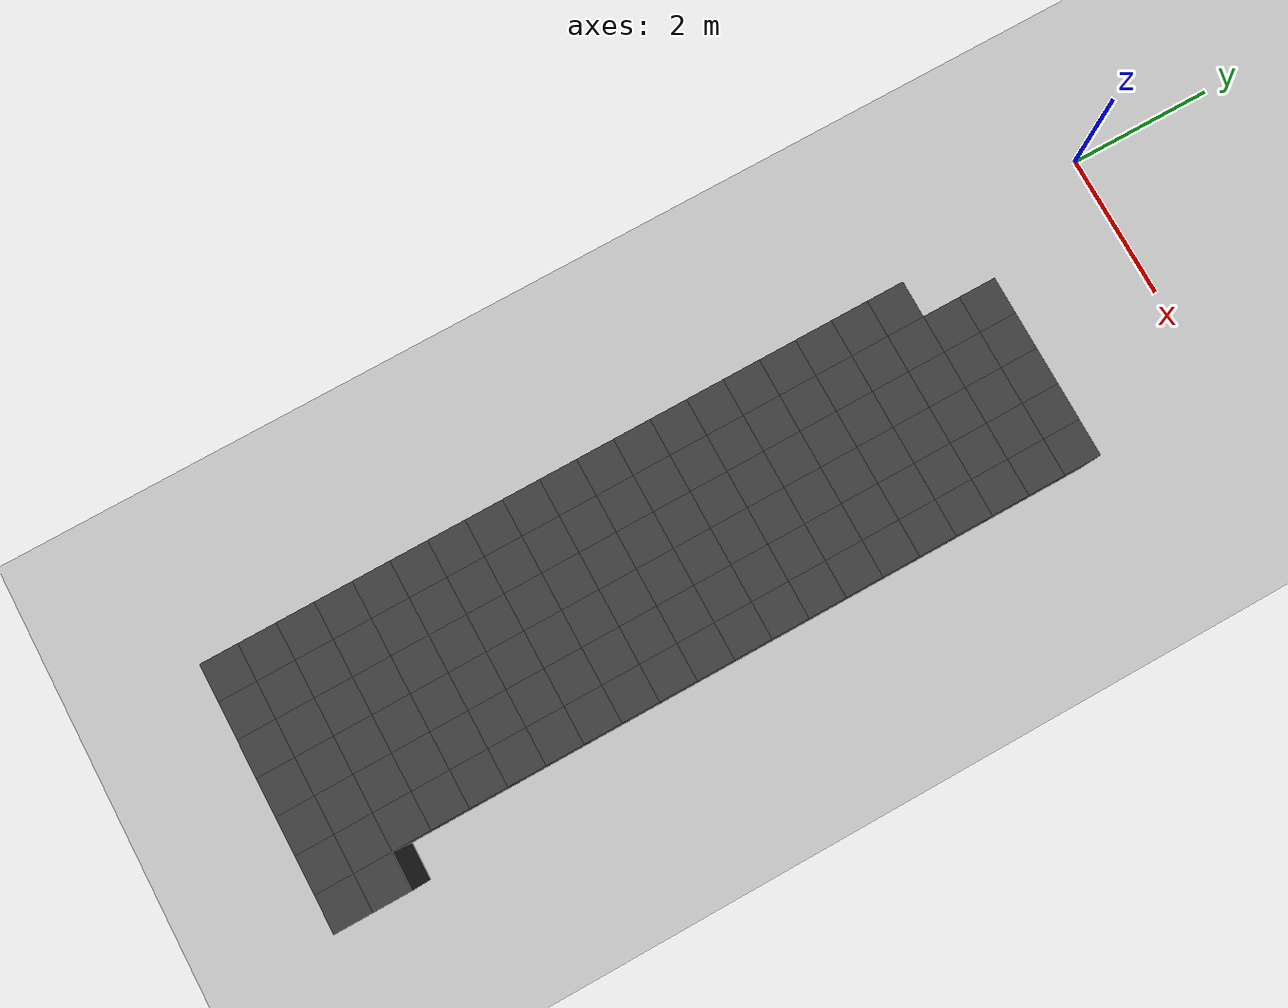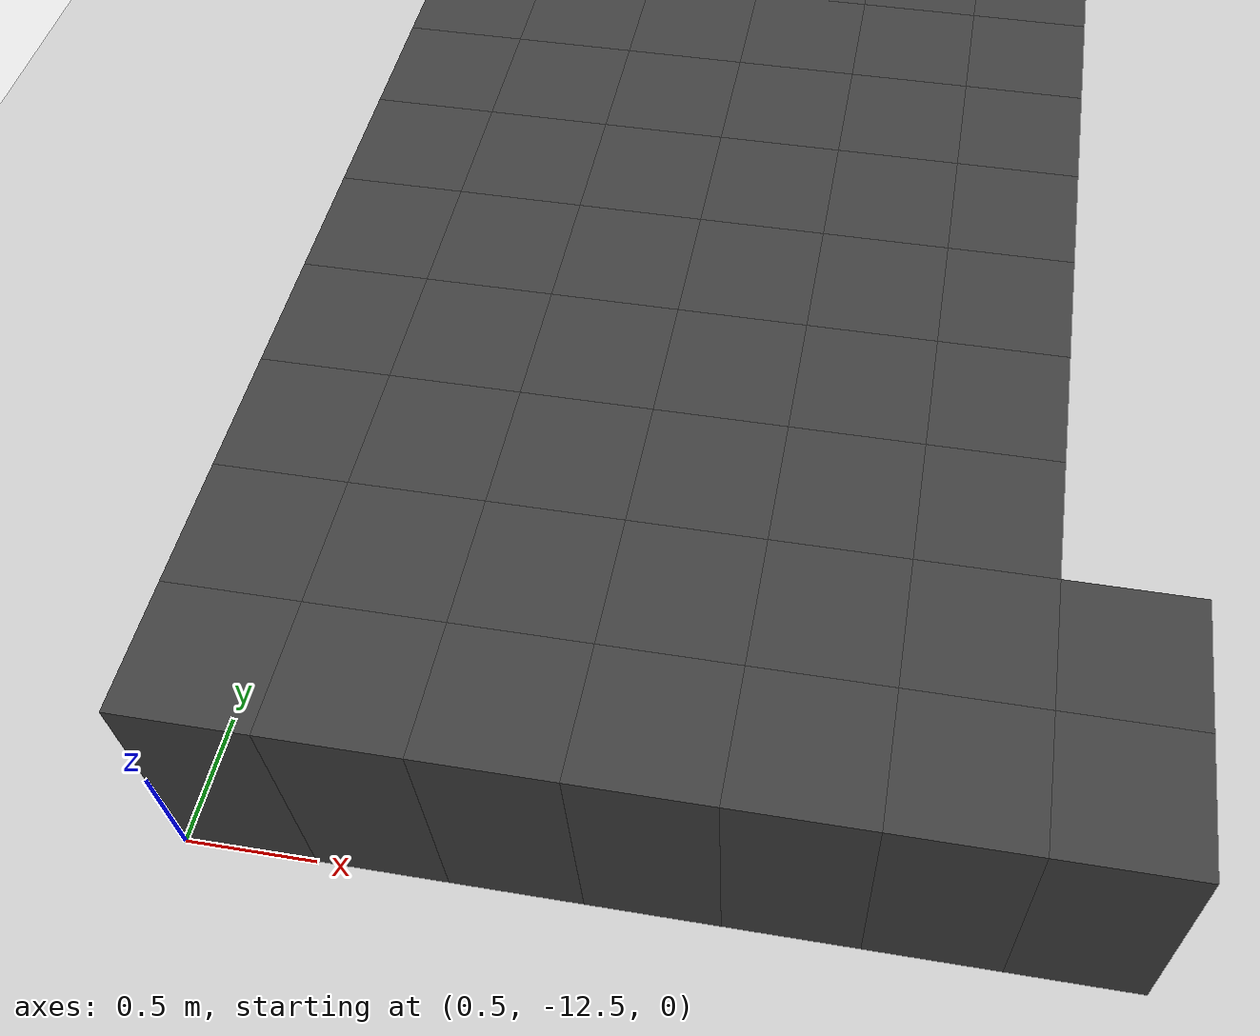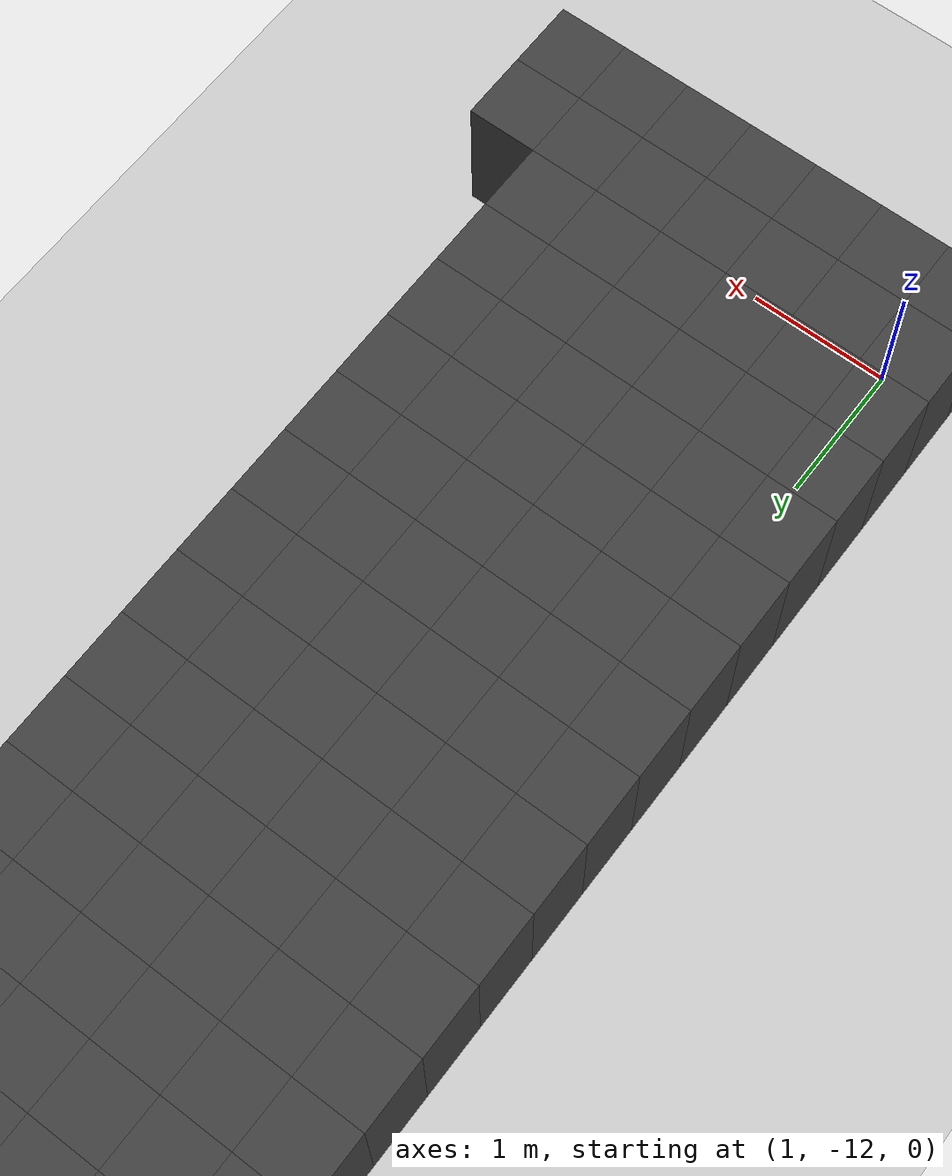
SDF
<sdf version="1.7">
 <world name="map_14190">
  <model name="ground_plane">
   <static>true</static>
   <link name="link">
    <collision name="collision">
     <geometry><plane><normal>0 0 1</normal><size>200 200</size></plane></geometry>
    </collision>
    <visual name="visual">
     <geometry><plane><normal>0 0 1</normal><size>200 200</size></plane></geometry>
     <material><ambient>0.8 0.8 0.8 1</ambient><diffuse>0.8 0.8 0.8 1</diffuse></material>
    </visual>
   </link>
  </model>
  <model name="maze_environment">
   <static>true</static>
   <link name="wall_1027">
    <pose>1.250 -2.250 0.500 0 0 0</pose>
    <collision name="col"><geometry><box><size>0.5 0.5 1.0</size></box></geometry></collision>
    <visual name="vis">
     <geometry><box><size>0.5 0.5 1.0</size></box></geometry>
     <material><ambient>0.15 0.15 0.15 1</ambient><diffuse>0.25 0.25 0.25 1</diffuse></material>
    </visual>
   </link>
   <link name="wall_1028">
    <pose>1.750 -2.250 0.500 0 0 0</pose>
    <collision name="col"><geometry><box><size>0.5 0.5 1.0</size></box></geometry></collision>
    <visual name="vis">
     <geometry><box><size>0.5 0.5 1.0</size></box></geometry>
     <material><ambient>0.15 0.15 0.15 1</ambient><diffuse>0.25 0.25 0.25 1</diffuse></material>
    </visual>
   </link>
   <link name="wall_1029">
    <pose>2.250 -2.250 0.500 0 0 0</pose>
    <collision name="col"><geometry><box><size>0.5 0.5 1.0</size></box></geometry></collision>
    <visual name="vis">
     <geometry><box><size>0.5 0.5 1.0</size></box></geometry>
     <material><ambient>0.15 0.15 0.15 1</ambient><diffuse>0.25 0.25 0.25 1</diffuse></material>
    </visual>
   </link>
   <link name="wall_1030">
    <pose>2.750 -2.250 0.500 0 0 0</pose>
    <collision name="col"><geometry><box><size>0.5 0.5 1.0</size></box></geometry></collision>
    <visual name="vis">
     <geometry><box><size>0.5 0.5 1.0</size></box></geometry>
     <material><ambient>0.15 0.15 0.15 1</ambient><diffuse>0.25 0.25 0.25 1</diffuse></material>
    </visual>
   </link>
   <link name="wall_1031">
    <pose>3.250 -2.250 0.500 0 0 0</pose>
    <collision name="col"><geometry><box><size>0.5 0.5 1.0</size></box></geometry></collision>
    <visual name="vis">
     <geometry><box><size>0.5 0.5 1.0</size></box></geometry>
     <material><ambient>0.15 0.15 0.15 1</ambient><diffuse>0.25 0.25 0.25 1</diffuse></material>
    </visual>
   </link>
   <link name="wall_1064">
    <pose>1.250 -2.750 0.500 0 0 0</pose>
    <collision name="col"><geometry><box><size>0.5 0.5 1.0</size></box></geometry></collision>
    <visual name="vis">
     <geometry><box><size>0.5 0.5 1.0</size></box></geometry>
     <material><ambient>0.15 0.15 0.15 1</ambient><diffuse>0.25 0.25 0.25 1</diffuse></material>
    </visual>
   </link>
   <link name="wall_1065">
    <pose>1.750 -2.750 0.500 0 0 0</pose>
    <collision name="col"><geometry><box><size>0.5 0.5 1.0</size></box></geometry></collision>
    <visual name="vis">
     <geometry><box><size>0.5 0.5 1.0</size></box></geometry>
     <material><ambient>0.15 0.15 0.15 1</ambient><diffuse>0.25 0.25 0.25 1</diffuse></material>
    </visual>
   </link>
   <link name="wall_1066">
    <pose>2.250 -2.750 0.500 0 0 0</pose>
    <collision name="col"><geometry><box><size>0.5 0.5 1.0</size></box></geometry></collision>
    <visual name="vis">
     <geometry><box><size>0.5 0.5 1.0</size></box></geometry>
     <material><ambient>0.15 0.15 0.15 1</ambient><diffuse>0.25 0.25 0.25 1</diffuse></material>
    </visual>
   </link>
   <link name="wall_1067">
    <pose>2.750 -2.750 0.500 0 0 0</pose>
    <collision name="col"><geometry><box><size>0.5 0.5 1.0</size></box></geometry></collision>
    <visual name="vis">
     <geometry><box><size>0.5 0.5 1.0</size></box></geometry>
     <material><ambient>0.15 0.15 0.15 1</ambient><diffuse>0.25 0.25 0.25 1</diffuse></material>
    </visual>
   </link>
   <link name="wall_1068">
    <pose>3.250 -2.750 0.500 0 0 0</pose>
    <collision name="col"><geometry><box><size>0.5 0.5 1.0</size></box></geometry></collision>
    <visual name="vis">
     <geometry><box><size>0.5 0.5 1.0</size></box></geometry>
     <material><ambient>0.15 0.15 0.15 1</ambient><diffuse>0.25 0.25 0.25 1</diffuse></material>
    </visual>
   </link>
   <link name="wall_1097">
    <pose>0.750 -3.250 0.500 0 0 0</pose>
    <collision name="col"><geometry><box><size>0.5 0.5 1.0</size></box></geometry></collision>
    <visual name="vis">
     <geometry><box><size>0.5 0.5 1.0</size></box></geometry>
     <material><ambient>0.15 0.15 0.15 1</ambient><diffuse>0.25 0.25 0.25 1</diffuse></material>
    </visual>
   </link>
   <link name="wall_1098">
    <pose>1.250 -3.250 0.500 0 0 0</pose>
    <collision name="col"><geometry><box><size>0.5 0.5 1.0</size></box></geometry></collision>
    <visual name="vis">
     <geometry><box><size>0.5 0.5 1.0</size></box></geometry>
     <material><ambient>0.15 0.15 0.15 1</ambient><diffuse>0.25 0.25 0.25 1</diffuse></material>
    </visual>
   </link>
   <link name="wall_1099">
    <pose>1.750 -3.250 0.500 0 0 0</pose>
    <collision name="col"><geometry><box><size>0.5 0.5 1.0</size></box></geometry></collision>
    <visual name="vis">
     <geometry><box><size>0.5 0.5 1.0</size></box></geometry>
     <material><ambient>0.15 0.15 0.15 1</ambient><diffuse>0.25 0.25 0.25 1</diffuse></material>
    </visual>
   </link>
   <link name="wall_1100">
    <pose>2.250 -3.250 0.500 0 0 0</pose>
    <collision name="col"><geometry><box><size>0.5 0.5 1.0</size></box></geometry></collision>
    <visual name="vis">
     <geometry><box><size>0.5 0.5 1.0</size></box></geometry>
     <material><ambient>0.15 0.15 0.15 1</ambient><diffuse>0.25 0.25 0.25 1</diffuse></material>
    </visual>
   </link>
   <link name="wall_1101">
    <pose>2.750 -3.250 0.500 0 0 0</pose>
    <collision name="col"><geometry><box><size>0.5 0.5 1.0</size></box></geometry></collision>
    <visual name="vis">
     <geometry><box><size>0.5 0.5 1.0</size></box></geometry>
     <material><ambient>0.15 0.15 0.15 1</ambient><diffuse>0.25 0.25 0.25 1</diffuse></material>
    </visual>
   </link>
   <link name="wall_1102">
    <pose>3.250 -3.250 0.500 0 0 0</pose>
    <collision name="col"><geometry><box><size>0.5 0.5 1.0</size></box></geometry></collision>
    <visual name="vis">
     <geometry><box><size>0.5 0.5 1.0</size></box></geometry>
     <material><ambient>0.15 0.15 0.15 1</ambient><diffuse>0.25 0.25 0.25 1</diffuse></material>
    </visual>
   </link>
   <link name="wall_1135">
    <pose>0.750 -3.750 0.500 0 0 0</pose>
    <collision name="col"><geometry><box><size>0.5 0.5 1.0</size></box></geometry></collision>
    <visual name="vis">
     <geometry><box><size>0.5 0.5 1.0</size></box></geometry>
     <material><ambient>0.15 0.15 0.15 1</ambient><diffuse>0.25 0.25 0.25 1</diffuse></material>
    </visual>
   </link>
   <link name="wall_1136">
    <pose>1.250 -3.750 0.500 0 0 0</pose>
    <collision name="col"><geometry><box><size>0.5 0.5 1.0</size></box></geometry></collision>
    <visual name="vis">
     <geometry><box><size>0.5 0.5 1.0</size></box></geometry>
     <material><ambient>0.15 0.15 0.15 1</ambient><diffuse>0.25 0.25 0.25 1</diffuse></material>
    </visual>
   </link>
   <link name="wall_1137">
    <pose>1.750 -3.750 0.500 0 0 0</pose>
    <collision name="col"><geometry><box><size>0.5 0.5 1.0</size></box></geometry></collision>
    <visual name="vis">
     <geometry><box><size>0.5 0.5 1.0</size></box></geometry>
     <material><ambient>0.15 0.15 0.15 1</ambient><diffuse>0.25 0.25 0.25 1</diffuse></material>
    </visual>
   </link>
   <link name="wall_1138">
    <pose>2.250 -3.750 0.500 0 0 0</pose>
    <collision name="col"><geometry><box><size>0.5 0.5 1.0</size></box></geometry></collision>
    <visual name="vis">
     <geometry><box><size>0.5 0.5 1.0</size></box></geometry>
     <material><ambient>0.15 0.15 0.15 1</ambient><diffuse>0.25 0.25 0.25 1</diffuse></material>
    </visual>
   </link>
   <link name="wall_1139">
    <pose>2.750 -3.750 0.500 0 0 0</pose>
    <collision name="col"><geometry><box><size>0.5 0.5 1.0</size></box></geometry></collision>
    <visual name="vis">
     <geometry><box><size>0.5 0.5 1.0</size></box></geometry>
     <material><ambient>0.15 0.15 0.15 1</ambient><diffuse>0.25 0.25 0.25 1</diffuse></material>
    </visual>
   </link>
   <link name="wall_1140">
    <pose>3.250 -3.750 0.500 0 0 0</pose>
    <collision name="col"><geometry><box><size>0.5 0.5 1.0</size></box></geometry></collision>
    <visual name="vis">
     <geometry><box><size>0.5 0.5 1.0</size></box></geometry>
     <material><ambient>0.15 0.15 0.15 1</ambient><diffuse>0.25 0.25 0.25 1</diffuse></material>
    </visual>
   </link>
   <link name="wall_1176">
    <pose>0.750 -4.250 0.500 0 0 0</pose>
    <collision name="col"><geometry><box><size>0.5 0.5 1.0</size></box></geometry></collision>
    <visual name="vis">
     <geometry><box><size>0.5 0.5 1.0</size></box></geometry>
     <material><ambient>0.15 0.15 0.15 1</ambient><diffuse>0.25 0.25 0.25 1</diffuse></material>
    </visual>
   </link>
   <link name="wall_1177">
    <pose>1.250 -4.250 0.500 0 0 0</pose>
    <collision name="col"><geometry><box><size>0.5 0.5 1.0</size></box></geometry></collision>
    <visual name="vis">
     <geometry><box><size>0.5 0.5 1.0</size></box></geometry>
     <material><ambient>0.15 0.15 0.15 1</ambient><diffuse>0.25 0.25 0.25 1</diffuse></material>
    </visual>
   </link>
   <link name="wall_1178">
    <pose>1.750 -4.250 0.500 0 0 0</pose>
    <collision name="col"><geometry><box><size>0.5 0.5 1.0</size></box></geometry></collision>
    <visual name="vis">
     <geometry><box><size>0.5 0.5 1.0</size></box></geometry>
     <material><ambient>0.15 0.15 0.15 1</ambient><diffuse>0.25 0.25 0.25 1</diffuse></material>
    </visual>
   </link>
   <link name="wall_1179">
    <pose>2.250 -4.250 0.500 0 0 0</pose>
    <collision name="col"><geometry><box><size>0.5 0.5 1.0</size></box></geometry></collision>
    <visual name="vis">
     <geometry><box><size>0.5 0.5 1.0</size></box></geometry>
     <material><ambient>0.15 0.15 0.15 1</ambient><diffuse>0.25 0.25 0.25 1</diffuse></material>
    </visual>
   </link>
   <link name="wall_1180">
    <pose>2.750 -4.250 0.500 0 0 0</pose>
    <collision name="col"><geometry><box><size>0.5 0.5 1.0</size></box></geometry></collision>
    <visual name="vis">
     <geometry><box><size>0.5 0.5 1.0</size></box></geometry>
     <material><ambient>0.15 0.15 0.15 1</ambient><diffuse>0.25 0.25 0.25 1</diffuse></material>
    </visual>
   </link>
   <link name="wall_1181">
    <pose>3.250 -4.250 0.500 0 0 0</pose>
    <collision name="col"><geometry><box><size>0.5 0.5 1.0</size></box></geometry></collision>
    <visual name="vis">
     <geometry><box><size>0.5 0.5 1.0</size></box></geometry>
     <material><ambient>0.15 0.15 0.15 1</ambient><diffuse>0.25 0.25 0.25 1</diffuse></material>
    </visual>
   </link>
   <link name="wall_1217">
    <pose>0.750 -4.750 0.500 0 0 0</pose>
    <collision name="col"><geometry><box><size>0.5 0.5 1.0</size></box></geometry></collision>
    <visual name="vis">
     <geometry><box><size>0.5 0.5 1.0</size></box></geometry>
     <material><ambient>0.15 0.15 0.15 1</ambient><diffuse>0.25 0.25 0.25 1</diffuse></material>
    </visual>
   </link>
   <link name="wall_1218">
    <pose>1.250 -4.750 0.500 0 0 0</pose>
    <collision name="col"><geometry><box><size>0.5 0.5 1.0</size></box></geometry></collision>
    <visual name="vis">
     <geometry><box><size>0.5 0.5 1.0</size></box></geometry>
     <material><ambient>0.15 0.15 0.15 1</ambient><diffuse>0.25 0.25 0.25 1</diffuse></material>
    </visual>
   </link>
   <link name="wall_1219">
    <pose>1.750 -4.750 0.500 0 0 0</pose>
    <collision name="col"><geometry><box><size>0.5 0.5 1.0</size></box></geometry></collision>
    <visual name="vis">
     <geometry><box><size>0.5 0.5 1.0</size></box></geometry>
     <material><ambient>0.15 0.15 0.15 1</ambient><diffuse>0.25 0.25 0.25 1</diffuse></material>
    </visual>
   </link>
   <link name="wall_1220">
    <pose>2.250 -4.750 0.500 0 0 0</pose>
    <collision name="col"><geometry><box><size>0.5 0.5 1.0</size></box></geometry></collision>
    <visual name="vis">
     <geometry><box><size>0.5 0.5 1.0</size></box></geometry>
     <material><ambient>0.15 0.15 0.15 1</ambient><diffuse>0.25 0.25 0.25 1</diffuse></material>
    </visual>
   </link>
   <link name="wall_1221">
    <pose>2.750 -4.750 0.500 0 0 0</pose>
    <collision name="col"><geometry><box><size>0.5 0.5 1.0</size></box></geometry></collision>
    <visual name="vis">
     <geometry><box><size>0.5 0.5 1.0</size></box></geometry>
     <material><ambient>0.15 0.15 0.15 1</ambient><diffuse>0.25 0.25 0.25 1</diffuse></material>
    </visual>
   </link>
   <link name="wall_1222">
    <pose>3.250 -4.750 0.500 0 0 0</pose>
    <collision name="col"><geometry><box><size>0.5 0.5 1.0</size></box></geometry></collision>
    <visual name="vis">
     <geometry><box><size>0.5 0.5 1.0</size></box></geometry>
     <material><ambient>0.15 0.15 0.15 1</ambient><diffuse>0.25 0.25 0.25 1</diffuse></material>
    </visual>
   </link>
   <link name="wall_1244">
    <pose>0.750 -5.250 0.500 0 0 0</pose>
    <collision name="col"><geometry><box><size>0.5 0.5 1.0</size></box></geometry></collision>
    <visual name="vis">
     <geometry><box><size>0.5 0.5 1.0</size></box></geometry>
     <material><ambient>0.15 0.15 0.15 1</ambient><diffuse>0.25 0.25 0.25 1</diffuse></material>
    </visual>
   </link>
   <link name="wall_1245">
    <pose>1.250 -5.250 0.500 0 0 0</pose>
    <collision name="col"><geometry><box><size>0.5 0.5 1.0</size></box></geometry></collision>
    <visual name="vis">
     <geometry><box><size>0.5 0.5 1.0</size></box></geometry>
     <material><ambient>0.15 0.15 0.15 1</ambient><diffuse>0.25 0.25 0.25 1</diffuse></material>
    </visual>
   </link>
   <link name="wall_1246">
    <pose>1.750 -5.250 0.500 0 0 0</pose>
    <collision name="col"><geometry><box><size>0.5 0.5 1.0</size></box></geometry></collision>
    <visual name="vis">
     <geometry><box><size>0.5 0.5 1.0</size></box></geometry>
     <material><ambient>0.15 0.15 0.15 1</ambient><diffuse>0.25 0.25 0.25 1</diffuse></material>
    </visual>
   </link>
   <link name="wall_1247">
    <pose>2.250 -5.250 0.500 0 0 0</pose>
    <collision name="col"><geometry><box><size>0.5 0.5 1.0</size></box></geometry></collision>
    <visual name="vis">
     <geometry><box><size>0.5 0.5 1.0</size></box></geometry>
     <material><ambient>0.15 0.15 0.15 1</ambient><diffuse>0.25 0.25 0.25 1</diffuse></material>
    </visual>
   </link>
   <link name="wall_1248">
    <pose>2.750 -5.250 0.500 0 0 0</pose>
    <collision name="col"><geometry><box><size>0.5 0.5 1.0</size></box></geometry></collision>
    <visual name="vis">
     <geometry><box><size>0.5 0.5 1.0</size></box></geometry>
     <material><ambient>0.15 0.15 0.15 1</ambient><diffuse>0.25 0.25 0.25 1</diffuse></material>
    </visual>
   </link>
   <link name="wall_1249">
    <pose>3.250 -5.250 0.500 0 0 0</pose>
    <collision name="col"><geometry><box><size>0.5 0.5 1.0</size></box></geometry></collision>
    <visual name="vis">
     <geometry><box><size>0.5 0.5 1.0</size></box></geometry>
     <material><ambient>0.15 0.15 0.15 1</ambient><diffuse>0.25 0.25 0.25 1</diffuse></material>
    </visual>
   </link>
   <link name="wall_1279">
    <pose>0.750 -5.750 0.500 0 0 0</pose>
    <collision name="col"><geometry><box><size>0.5 0.5 1.0</size></box></geometry></collision>
    <visual name="vis">
     <geometry><box><size>0.5 0.5 1.0</size></box></geometry>
     <material><ambient>0.15 0.15 0.15 1</ambient><diffuse>0.25 0.25 0.25 1</diffuse></material>
    </visual>
   </link>
   <link name="wall_1280">
    <pose>1.250 -5.750 0.500 0 0 0</pose>
    <collision name="col"><geometry><box><size>0.5 0.5 1.0</size></box></geometry></collision>
    <visual name="vis">
     <geometry><box><size>0.5 0.5 1.0</size></box></geometry>
     <material><ambient>0.15 0.15 0.15 1</ambient><diffuse>0.25 0.25 0.25 1</diffuse></material>
    </visual>
   </link>
   <link name="wall_1281">
    <pose>1.750 -5.750 0.500 0 0 0</pose>
    <collision name="col"><geometry><box><size>0.5 0.5 1.0</size></box></geometry></collision>
    <visual name="vis">
     <geometry><box><size>0.5 0.5 1.0</size></box></geometry>
     <material><ambient>0.15 0.15 0.15 1</ambient><diffuse>0.25 0.25 0.25 1</diffuse></material>
    </visual>
   </link>
   <link name="wall_1282">
    <pose>2.250 -5.750 0.500 0 0 0</pose>
    <collision name="col"><geometry><box><size>0.5 0.5 1.0</size></box></geometry></collision>
    <visual name="vis">
     <geometry><box><size>0.5 0.5 1.0</size></box></geometry>
     <material><ambient>0.15 0.15 0.15 1</ambient><diffuse>0.25 0.25 0.25 1</diffuse></material>
    </visual>
   </link>
   <link name="wall_1283">
    <pose>2.750 -5.750 0.500 0 0 0</pose>
    <collision name="col"><geometry><box><size>0.5 0.5 1.0</size></box></geometry></collision>
    <visual name="vis">
     <geometry><box><size>0.5 0.5 1.0</size></box></geometry>
     <material><ambient>0.15 0.15 0.15 1</ambient><diffuse>0.25 0.25 0.25 1</diffuse></material>
    </visual>
   </link>
   <link name="wall_1284">
    <pose>3.250 -5.750 0.500 0 0 0</pose>
    <collision name="col"><geometry><box><size>0.5 0.5 1.0</size></box></geometry></collision>
    <visual name="vis">
     <geometry><box><size>0.5 0.5 1.0</size></box></geometry>
     <material><ambient>0.15 0.15 0.15 1</ambient><diffuse>0.25 0.25 0.25 1</diffuse></material>
    </visual>
   </link>
   <link name="wall_1314">
    <pose>0.750 -6.250 0.500 0 0 0</pose>
    <collision name="col"><geometry><box><size>0.5 0.5 1.0</size></box></geometry></collision>
    <visual name="vis">
     <geometry><box><size>0.5 0.5 1.0</size></box></geometry>
     <material><ambient>0.15 0.15 0.15 1</ambient><diffuse>0.25 0.25 0.25 1</diffuse></material>
    </visual>
   </link>
   <link name="wall_1315">
    <pose>1.250 -6.250 0.500 0 0 0</pose>
    <collision name="col"><geometry><box><size>0.5 0.5 1.0</size></box></geometry></collision>
    <visual name="vis">
     <geometry><box><size>0.5 0.5 1.0</size></box></geometry>
     <material><ambient>0.15 0.15 0.15 1</ambient><diffuse>0.25 0.25 0.25 1</diffuse></material>
    </visual>
   </link>
   <link name="wall_1316">
    <pose>1.750 -6.250 0.500 0 0 0</pose>
    <collision name="col"><geometry><box><size>0.5 0.5 1.0</size></box></geometry></collision>
    <visual name="vis">
     <geometry><box><size>0.5 0.5 1.0</size></box></geometry>
     <material><ambient>0.15 0.15 0.15 1</ambient><diffuse>0.25 0.25 0.25 1</diffuse></material>
    </visual>
   </link>
   <link name="wall_1317">
    <pose>2.250 -6.250 0.500 0 0 0</pose>
    <collision name="col"><geometry><box><size>0.5 0.5 1.0</size></box></geometry></collision>
    <visual name="vis">
     <geometry><box><size>0.5 0.5 1.0</size></box></geometry>
     <material><ambient>0.15 0.15 0.15 1</ambient><diffuse>0.25 0.25 0.25 1</diffuse></material>
    </visual>
   </link>
   <link name="wall_1318">
    <pose>2.750 -6.250 0.500 0 0 0</pose>
    <collision name="col"><geometry><box><size>0.5 0.5 1.0</size></box></geometry></collision>
    <visual name="vis">
     <geometry><box><size>0.5 0.5 1.0</size></box></geometry>
     <material><ambient>0.15 0.15 0.15 1</ambient><diffuse>0.25 0.25 0.25 1</diffuse></material>
    </visual>
   </link>
   <link name="wall_1319">
    <pose>3.250 -6.250 0.500 0 0 0</pose>
    <collision name="col"><geometry><box><size>0.5 0.5 1.0</size></box></geometry></collision>
    <visual name="vis">
     <geometry><box><size>0.5 0.5 1.0</size></box></geometry>
     <material><ambient>0.15 0.15 0.15 1</ambient><diffuse>0.25 0.25 0.25 1</diffuse></material>
    </visual>
   </link>
   <link name="wall_1355">
    <pose>0.750 -6.750 0.500 0 0 0</pose>
    <collision name="col"><geometry><box><size>0.5 0.5 1.0</size></box></geometry></collision>
    <visual name="vis">
     <geometry><box><size>0.5 0.5 1.0</size></box></geometry>
     <material><ambient>0.15 0.15 0.15 1</ambient><diffuse>0.25 0.25 0.25 1</diffuse></material>
    </visual>
   </link>
   <link name="wall_1356">
    <pose>1.250 -6.750 0.500 0 0 0</pose>
    <collision name="col"><geometry><box><size>0.5 0.5 1.0</size></box></geometry></collision>
    <visual name="vis">
     <geometry><box><size>0.5 0.5 1.0</size></box></geometry>
     <material><ambient>0.15 0.15 0.15 1</ambient><diffuse>0.25 0.25 0.25 1</diffuse></material>
    </visual>
   </link>
   <link name="wall_1357">
    <pose>1.750 -6.750 0.500 0 0 0</pose>
    <collision name="col"><geometry><box><size>0.5 0.5 1.0</size></box></geometry></collision>
    <visual name="vis">
     <geometry><box><size>0.5 0.5 1.0</size></box></geometry>
     <material><ambient>0.15 0.15 0.15 1</ambient><diffuse>0.25 0.25 0.25 1</diffuse></material>
    </visual>
   </link>
   <link name="wall_1358">
    <pose>2.250 -6.750 0.500 0 0 0</pose>
    <collision name="col"><geometry><box><size>0.5 0.5 1.0</size></box></geometry></collision>
    <visual name="vis">
     <geometry><box><size>0.5 0.5 1.0</size></box></geometry>
     <material><ambient>0.15 0.15 0.15 1</ambient><diffuse>0.25 0.25 0.25 1</diffuse></material>
    </visual>
   </link>
   <link name="wall_1359">
    <pose>2.750 -6.750 0.500 0 0 0</pose>
    <collision name="col"><geometry><box><size>0.5 0.5 1.0</size></box></geometry></collision>
    <visual name="vis">
     <geometry><box><size>0.5 0.5 1.0</size></box></geometry>
     <material><ambient>0.15 0.15 0.15 1</ambient><diffuse>0.25 0.25 0.25 1</diffuse></material>
    </visual>
   </link>
   <link name="wall_1360">
    <pose>3.250 -6.750 0.500 0 0 0</pose>
    <collision name="col"><geometry><box><size>0.5 0.5 1.0</size></box></geometry></collision>
    <visual name="vis">
     <geometry><box><size>0.5 0.5 1.0</size></box></geometry>
     <material><ambient>0.15 0.15 0.15 1</ambient><diffuse>0.25 0.25 0.25 1</diffuse></material>
    </visual>
   </link>
   <link name="wall_1396">
    <pose>0.750 -7.250 0.500 0 0 0</pose>
    <collision name="col"><geometry><box><size>0.5 0.5 1.0</size></box></geometry></collision>
    <visual name="vis">
     <geometry><box><size>0.5 0.5 1.0</size></box></geometry>
     <material><ambient>0.15 0.15 0.15 1</ambient><diffuse>0.25 0.25 0.25 1</diffuse></material>
    </visual>
   </link>
   <link name="wall_1397">
    <pose>1.250 -7.250 0.500 0 0 0</pose>
    <collision name="col"><geometry><box><size>0.5 0.5 1.0</size></box></geometry></collision>
    <visual name="vis">
     <geometry><box><size>0.5 0.5 1.0</size></box></geometry>
     <material><ambient>0.15 0.15 0.15 1</ambient><diffuse>0.25 0.25 0.25 1</diffuse></material>
    </visual>
   </link>
   <link name="wall_1398">
    <pose>1.750 -7.250 0.500 0 0 0</pose>
    <collision name="col"><geometry><box><size>0.5 0.5 1.0</size></box></geometry></collision>
    <visual name="vis">
     <geometry><box><size>0.5 0.5 1.0</size></box></geometry>
     <material><ambient>0.15 0.15 0.15 1</ambient><diffuse>0.25 0.25 0.25 1</diffuse></material>
    </visual>
   </link>
   <link name="wall_1399">
    <pose>2.250 -7.250 0.500 0 0 0</pose>
    <collision name="col"><geometry><box><size>0.5 0.5 1.0</size></box></geometry></collision>
    <visual name="vis">
     <geometry><box><size>0.5 0.5 1.0</size></box></geometry>
     <material><ambient>0.15 0.15 0.15 1</ambient><diffuse>0.25 0.25 0.25 1</diffuse></material>
    </visual>
   </link>
   <link name="wall_1400">
    <pose>2.750 -7.250 0.500 0 0 0</pose>
    <collision name="col"><geometry><box><size>0.5 0.5 1.0</size></box></geometry></collision>
    <visual name="vis">
     <geometry><box><size>0.5 0.5 1.0</size></box></geometry>
     <material><ambient>0.15 0.15 0.15 1</ambient><diffuse>0.25 0.25 0.25 1</diffuse></material>
    </visual>
   </link>
   <link name="wall_1401">
    <pose>3.250 -7.250 0.500 0 0 0</pose>
    <collision name="col"><geometry><box><size>0.5 0.5 1.0</size></box></geometry></collision>
    <visual name="vis">
     <geometry><box><size>0.5 0.5 1.0</size></box></geometry>
     <material><ambient>0.15 0.15 0.15 1</ambient><diffuse>0.25 0.25 0.25 1</diffuse></material>
    </visual>
   </link>
   <link name="wall_1429">
    <pose>0.750 -7.750 0.500 0 0 0</pose>
    <collision name="col"><geometry><box><size>0.5 0.5 1.0</size></box></geometry></collision>
    <visual name="vis">
     <geometry><box><size>0.5 0.5 1.0</size></box></geometry>
     <material><ambient>0.15 0.15 0.15 1</ambient><diffuse>0.25 0.25 0.25 1</diffuse></material>
    </visual>
   </link>
   <link name="wall_1430">
    <pose>1.250 -7.750 0.500 0 0 0</pose>
    <collision name="col"><geometry><box><size>0.5 0.5 1.0</size></box></geometry></collision>
    <visual name="vis">
     <geometry><box><size>0.5 0.5 1.0</size></box></geometry>
     <material><ambient>0.15 0.15 0.15 1</ambient><diffuse>0.25 0.25 0.25 1</diffuse></material>
    </visual>
   </link>
   <link name="wall_1431">
    <pose>1.750 -7.750 0.500 0 0 0</pose>
    <collision name="col"><geometry><box><size>0.5 0.5 1.0</size></box></geometry></collision>
    <visual name="vis">
     <geometry><box><size>0.5 0.5 1.0</size></box></geometry>
     <material><ambient>0.15 0.15 0.15 1</ambient><diffuse>0.25 0.25 0.25 1</diffuse></material>
    </visual>
   </link>
   <link name="wall_1432">
    <pose>2.250 -7.750 0.500 0 0 0</pose>
    <collision name="col"><geometry><box><size>0.5 0.5 1.0</size></box></geometry></collision>
    <visual name="vis">
     <geometry><box><size>0.5 0.5 1.0</size></box></geometry>
     <material><ambient>0.15 0.15 0.15 1</ambient><diffuse>0.25 0.25 0.25 1</diffuse></material>
    </visual>
   </link>
   <link name="wall_1433">
    <pose>2.750 -7.750 0.500 0 0 0</pose>
    <collision name="col"><geometry><box><size>0.5 0.5 1.0</size></box></geometry></collision>
    <visual name="vis">
     <geometry><box><size>0.5 0.5 1.0</size></box></geometry>
     <material><ambient>0.15 0.15 0.15 1</ambient><diffuse>0.25 0.25 0.25 1</diffuse></material>
    </visual>
   </link>
   <link name="wall_1434">
    <pose>3.250 -7.750 0.500 0 0 0</pose>
    <collision name="col"><geometry><box><size>0.5 0.5 1.0</size></box></geometry></collision>
    <visual name="vis">
     <geometry><box><size>0.5 0.5 1.0</size></box></geometry>
     <material><ambient>0.15 0.15 0.15 1</ambient><diffuse>0.25 0.25 0.25 1</diffuse></material>
    </visual>
   </link>
   <link name="wall_1462">
    <pose>0.750 -8.250 0.500 0 0 0</pose>
    <collision name="col"><geometry><box><size>0.5 0.5 1.0</size></box></geometry></collision>
    <visual name="vis">
     <geometry><box><size>0.5 0.5 1.0</size></box></geometry>
     <material><ambient>0.15 0.15 0.15 1</ambient><diffuse>0.25 0.25 0.25 1</diffuse></material>
    </visual>
   </link>
   <link name="wall_1463">
    <pose>1.250 -8.250 0.500 0 0 0</pose>
    <collision name="col"><geometry><box><size>0.5 0.5 1.0</size></box></geometry></collision>
    <visual name="vis">
     <geometry><box><size>0.5 0.5 1.0</size></box></geometry>
     <material><ambient>0.15 0.15 0.15 1</ambient><diffuse>0.25 0.25 0.25 1</diffuse></material>
    </visual>
   </link>
   <link name="wall_1464">
    <pose>1.750 -8.250 0.500 0 0 0</pose>
    <collision name="col"><geometry><box><size>0.5 0.5 1.0</size></box></geometry></collision>
    <visual name="vis">
     <geometry><box><size>0.5 0.5 1.0</size></box></geometry>
     <material><ambient>0.15 0.15 0.15 1</ambient><diffuse>0.25 0.25 0.25 1</diffuse></material>
    </visual>
   </link>
   <link name="wall_1465">
    <pose>2.250 -8.250 0.500 0 0 0</pose>
    <collision name="col"><geometry><box><size>0.5 0.5 1.0</size></box></geometry></collision>
    <visual name="vis">
     <geometry><box><size>0.5 0.5 1.0</size></box></geometry>
     <material><ambient>0.15 0.15 0.15 1</ambient><diffuse>0.25 0.25 0.25 1</diffuse></material>
    </visual>
   </link>
   <link name="wall_1466">
    <pose>2.750 -8.250 0.500 0 0 0</pose>
    <collision name="col"><geometry><box><size>0.5 0.5 1.0</size></box></geometry></collision>
    <visual name="vis">
     <geometry><box><size>0.5 0.5 1.0</size></box></geometry>
     <material><ambient>0.15 0.15 0.15 1</ambient><diffuse>0.25 0.25 0.25 1</diffuse></material>
    </visual>
   </link>
   <link name="wall_1467">
    <pose>3.250 -8.250 0.500 0 0 0</pose>
    <collision name="col"><geometry><box><size>0.5 0.5 1.0</size></box></geometry></collision>
    <visual name="vis">
     <geometry><box><size>0.5 0.5 1.0</size></box></geometry>
     <material><ambient>0.15 0.15 0.15 1</ambient><diffuse>0.25 0.25 0.25 1</diffuse></material>
    </visual>
   </link>
   <link name="wall_1501">
    <pose>0.750 -8.750 0.500 0 0 0</pose>
    <collision name="col"><geometry><box><size>0.5 0.5 1.0</size></box></geometry></collision>
    <visual name="vis">
     <geometry><box><size>0.5 0.5 1.0</size></box></geometry>
     <material><ambient>0.15 0.15 0.15 1</ambient><diffuse>0.25 0.25 0.25 1</diffuse></material>
    </visual>
   </link>
   <link name="wall_1502">
    <pose>1.250 -8.750 0.500 0 0 0</pose>
    <collision name="col"><geometry><box><size>0.5 0.5 1.0</size></box></geometry></collision>
    <visual name="vis">
     <geometry><box><size>0.5 0.5 1.0</size></box></geometry>
     <material><ambient>0.15 0.15 0.15 1</ambient><diffuse>0.25 0.25 0.25 1</diffuse></material>
    </visual>
   </link>
   <link name="wall_1503">
    <pose>1.750 -8.750 0.500 0 0 0</pose>
    <collision name="col"><geometry><box><size>0.5 0.5 1.0</size></box></geometry></collision>
    <visual name="vis">
     <geometry><box><size>0.5 0.5 1.0</size></box></geometry>
     <material><ambient>0.15 0.15 0.15 1</ambient><diffuse>0.25 0.25 0.25 1</diffuse></material>
    </visual>
   </link>
   <link name="wall_1504">
    <pose>2.250 -8.750 0.500 0 0 0</pose>
    <collision name="col"><geometry><box><size>0.5 0.5 1.0</size></box></geometry></collision>
    <visual name="vis">
     <geometry><box><size>0.5 0.5 1.0</size></box></geometry>
     <material><ambient>0.15 0.15 0.15 1</ambient><diffuse>0.25 0.25 0.25 1</diffuse></material>
    </visual>
   </link>
   <link name="wall_1505">
    <pose>2.750 -8.750 0.500 0 0 0</pose>
    <collision name="col"><geometry><box><size>0.5 0.5 1.0</size></box></geometry></collision>
    <visual name="vis">
     <geometry><box><size>0.5 0.5 1.0</size></box></geometry>
     <material><ambient>0.15 0.15 0.15 1</ambient><diffuse>0.25 0.25 0.25 1</diffuse></material>
    </visual>
   </link>
   <link name="wall_1506">
    <pose>3.250 -8.750 0.500 0 0 0</pose>
    <collision name="col"><geometry><box><size>0.5 0.5 1.0</size></box></geometry></collision>
    <visual name="vis">
     <geometry><box><size>0.5 0.5 1.0</size></box></geometry>
     <material><ambient>0.15 0.15 0.15 1</ambient><diffuse>0.25 0.25 0.25 1</diffuse></material>
    </visual>
   </link>
   <link name="wall_1534">
    <pose>0.750 -9.250 0.500 0 0 0</pose>
    <collision name="col"><geometry><box><size>0.5 0.5 1.0</size></box></geometry></collision>
    <visual name="vis">
     <geometry><box><size>0.5 0.5 1.0</size></box></geometry>
     <material><ambient>0.15 0.15 0.15 1</ambient><diffuse>0.25 0.25 0.25 1</diffuse></material>
    </visual>
   </link>
   <link name="wall_1535">
    <pose>1.250 -9.250 0.500 0 0 0</pose>
    <collision name="col"><geometry><box><size>0.5 0.5 1.0</size></box></geometry></collision>
    <visual name="vis">
     <geometry><box><size>0.5 0.5 1.0</size></box></geometry>
     <material><ambient>0.15 0.15 0.15 1</ambient><diffuse>0.25 0.25 0.25 1</diffuse></material>
    </visual>
   </link>
   <link name="wall_1536">
    <pose>1.750 -9.250 0.500 0 0 0</pose>
    <collision name="col"><geometry><box><size>0.5 0.5 1.0</size></box></geometry></collision>
    <visual name="vis">
     <geometry><box><size>0.5 0.5 1.0</size></box></geometry>
     <material><ambient>0.15 0.15 0.15 1</ambient><diffuse>0.25 0.25 0.25 1</diffuse></material>
    </visual>
   </link>
   <link name="wall_1537">
    <pose>2.250 -9.250 0.500 0 0 0</pose>
    <collision name="col"><geometry><box><size>0.5 0.5 1.0</size></box></geometry></collision>
    <visual name="vis">
     <geometry><box><size>0.5 0.5 1.0</size></box></geometry>
     <material><ambient>0.15 0.15 0.15 1</ambient><diffuse>0.25 0.25 0.25 1</diffuse></material>
    </visual>
   </link>
   <link name="wall_1538">
    <pose>2.750 -9.250 0.500 0 0 0</pose>
    <collision name="col"><geometry><box><size>0.5 0.5 1.0</size></box></geometry></collision>
    <visual name="vis">
     <geometry><box><size>0.5 0.5 1.0</size></box></geometry>
     <material><ambient>0.15 0.15 0.15 1</ambient><diffuse>0.25 0.25 0.25 1</diffuse></material>
    </visual>
   </link>
   <link name="wall_1539">
    <pose>3.250 -9.250 0.500 0 0 0</pose>
    <collision name="col"><geometry><box><size>0.5 0.5 1.0</size></box></geometry></collision>
    <visual name="vis">
     <geometry><box><size>0.5 0.5 1.0</size></box></geometry>
     <material><ambient>0.15 0.15 0.15 1</ambient><diffuse>0.25 0.25 0.25 1</diffuse></material>
    </visual>
   </link>
   <link name="wall_1566">
    <pose>0.750 -9.750 0.500 0 0 0</pose>
    <collision name="col"><geometry><box><size>0.5 0.5 1.0</size></box></geometry></collision>
    <visual name="vis">
     <geometry><box><size>0.5 0.5 1.0</size></box></geometry>
     <material><ambient>0.15 0.15 0.15 1</ambient><diffuse>0.25 0.25 0.25 1</diffuse></material>
    </visual>
   </link>
   <link name="wall_1567">
    <pose>1.250 -9.750 0.500 0 0 0</pose>
    <collision name="col"><geometry><box><size>0.5 0.5 1.0</size></box></geometry></collision>
    <visual name="vis">
     <geometry><box><size>0.5 0.5 1.0</size></box></geometry>
     <material><ambient>0.15 0.15 0.15 1</ambient><diffuse>0.25 0.25 0.25 1</diffuse></material>
    </visual>
   </link>
   <link name="wall_1568">
    <pose>1.750 -9.750 0.500 0 0 0</pose>
    <collision name="col"><geometry><box><size>0.5 0.5 1.0</size></box></geometry></collision>
    <visual name="vis">
     <geometry><box><size>0.5 0.5 1.0</size></box></geometry>
     <material><ambient>0.15 0.15 0.15 1</ambient><diffuse>0.25 0.25 0.25 1</diffuse></material>
    </visual>
   </link>
   <link name="wall_1569">
    <pose>2.250 -9.750 0.500 0 0 0</pose>
    <collision name="col"><geometry><box><size>0.5 0.5 1.0</size></box></geometry></collision>
    <visual name="vis">
     <geometry><box><size>0.5 0.5 1.0</size></box></geometry>
     <material><ambient>0.15 0.15 0.15 1</ambient><diffuse>0.25 0.25 0.25 1</diffuse></material>
    </visual>
   </link>
   <link name="wall_1570">
    <pose>2.750 -9.750 0.500 0 0 0</pose>
    <collision name="col"><geometry><box><size>0.5 0.5 1.0</size></box></geometry></collision>
    <visual name="vis">
     <geometry><box><size>0.5 0.5 1.0</size></box></geometry>
     <material><ambient>0.15 0.15 0.15 1</ambient><diffuse>0.25 0.25 0.25 1</diffuse></material>
    </visual>
   </link>
   <link name="wall_1571">
    <pose>3.250 -9.750 0.500 0 0 0</pose>
    <collision name="col"><geometry><box><size>0.5 0.5 1.0</size></box></geometry></collision>
    <visual name="vis">
     <geometry><box><size>0.5 0.5 1.0</size></box></geometry>
     <material><ambient>0.15 0.15 0.15 1</ambient><diffuse>0.25 0.25 0.25 1</diffuse></material>
    </visual>
   </link>
   <link name="wall_1599">
    <pose>0.750 -10.250 0.500 0 0 0</pose>
    <collision name="col"><geometry><box><size>0.5 0.5 1.0</size></box></geometry></collision>
    <visual name="vis">
     <geometry><box><size>0.5 0.5 1.0</size></box></geometry>
     <material><ambient>0.15 0.15 0.15 1</ambient><diffuse>0.25 0.25 0.25 1</diffuse></material>
    </visual>
   </link>
   <link name="wall_1600">
    <pose>1.250 -10.250 0.500 0 0 0</pose>
    <collision name="col"><geometry><box><size>0.5 0.5 1.0</size></box></geometry></collision>
    <visual name="vis">
     <geometry><box><size>0.5 0.5 1.0</size></box></geometry>
     <material><ambient>0.15 0.15 0.15 1</ambient><diffuse>0.25 0.25 0.25 1</diffuse></material>
    </visual>
   </link>
   <link name="wall_1601">
    <pose>1.750 -10.250 0.500 0 0 0</pose>
    <collision name="col"><geometry><box><size>0.5 0.5 1.0</size></box></geometry></collision>
    <visual name="vis">
     <geometry><box><size>0.5 0.5 1.0</size></box></geometry>
     <material><ambient>0.15 0.15 0.15 1</ambient><diffuse>0.25 0.25 0.25 1</diffuse></material>
    </visual>
   </link>
   <link name="wall_1602">
    <pose>2.250 -10.250 0.500 0 0 0</pose>
    <collision name="col"><geometry><box><size>0.5 0.5 1.0</size></box></geometry></collision>
    <visual name="vis">
     <geometry><box><size>0.5 0.5 1.0</size></box></geometry>
     <material><ambient>0.15 0.15 0.15 1</ambient><diffuse>0.25 0.25 0.25 1</diffuse></material>
    </visual>
   </link>
   <link name="wall_1603">
    <pose>2.750 -10.250 0.500 0 0 0</pose>
    <collision name="col"><geometry><box><size>0.5 0.5 1.0</size></box></geometry></collision>
    <visual name="vis">
     <geometry><box><size>0.5 0.5 1.0</size></box></geometry>
     <material><ambient>0.15 0.15 0.15 1</ambient><diffuse>0.25 0.25 0.25 1</diffuse></material>
    </visual>
   </link>
   <link name="wall_1604">
    <pose>3.250 -10.250 0.500 0 0 0</pose>
    <collision name="col"><geometry><box><size>0.5 0.5 1.0</size></box></geometry></collision>
    <visual name="vis">
     <geometry><box><size>0.5 0.5 1.0</size></box></geometry>
     <material><ambient>0.15 0.15 0.15 1</ambient><diffuse>0.25 0.25 0.25 1</diffuse></material>
    </visual>
   </link>
   <link name="wall_1632">
    <pose>0.750 -10.750 0.500 0 0 0</pose>
    <collision name="col"><geometry><box><size>0.5 0.5 1.0</size></box></geometry></collision>
    <visual name="vis">
     <geometry><box><size>0.5 0.5 1.0</size></box></geometry>
     <material><ambient>0.15 0.15 0.15 1</ambient><diffuse>0.25 0.25 0.25 1</diffuse></material>
    </visual>
   </link>
   <link name="wall_1633">
    <pose>1.250 -10.750 0.500 0 0 0</pose>
    <collision name="col"><geometry><box><size>0.5 0.5 1.0</size></box></geometry></collision>
    <visual name="vis">
     <geometry><box><size>0.5 0.5 1.0</size></box></geometry>
     <material><ambient>0.15 0.15 0.15 1</ambient><diffuse>0.25 0.25 0.25 1</diffuse></material>
    </visual>
   </link>
   <link name="wall_1634">
    <pose>1.750 -10.750 0.500 0 0 0</pose>
    <collision name="col"><geometry><box><size>0.5 0.5 1.0</size></box></geometry></collision>
    <visual name="vis">
     <geometry><box><size>0.5 0.5 1.0</size></box></geometry>
     <material><ambient>0.15 0.15 0.15 1</ambient><diffuse>0.25 0.25 0.25 1</diffuse></material>
    </visual>
   </link>
   <link name="wall_1635">
    <pose>2.250 -10.750 0.500 0 0 0</pose>
    <collision name="col"><geometry><box><size>0.5 0.5 1.0</size></box></geometry></collision>
    <visual name="vis">
     <geometry><box><size>0.5 0.5 1.0</size></box></geometry>
     <material><ambient>0.15 0.15 0.15 1</ambient><diffuse>0.25 0.25 0.25 1</diffuse></material>
    </visual>
   </link>
   <link name="wall_1636">
    <pose>2.750 -10.750 0.500 0 0 0</pose>
    <collision name="col"><geometry><box><size>0.5 0.5 1.0</size></box></geometry></collision>
    <visual name="vis">
     <geometry><box><size>0.5 0.5 1.0</size></box></geometry>
     <material><ambient>0.15 0.15 0.15 1</ambient><diffuse>0.25 0.25 0.25 1</diffuse></material>
    </visual>
   </link>
   <link name="wall_1637">
    <pose>3.250 -10.750 0.500 0 0 0</pose>
    <collision name="col"><geometry><box><size>0.5 0.5 1.0</size></box></geometry></collision>
    <visual name="vis">
     <geometry><box><size>0.5 0.5 1.0</size></box></geometry>
     <material><ambient>0.15 0.15 0.15 1</ambient><diffuse>0.25 0.25 0.25 1</diffuse></material>
    </visual>
   </link>
   <link name="wall_1662">
    <pose>0.750 -11.250 0.500 0 0 0</pose>
    <collision name="col"><geometry><box><size>0.5 0.5 1.0</size></box></geometry></collision>
    <visual name="vis">
     <geometry><box><size>0.5 0.5 1.0</size></box></geometry>
     <material><ambient>0.15 0.15 0.15 1</ambient><diffuse>0.25 0.25 0.25 1</diffuse></material>
    </visual>
   </link>
   <link name="wall_1663">
    <pose>1.250 -11.250 0.500 0 0 0</pose>
    <collision name="col"><geometry><box><size>0.5 0.5 1.0</size></box></geometry></collision>
    <visual name="vis">
     <geometry><box><size>0.5 0.5 1.0</size></box></geometry>
     <material><ambient>0.15 0.15 0.15 1</ambient><diffuse>0.25 0.25 0.25 1</diffuse></material>
    </visual>
   </link>
   <link name="wall_1664">
    <pose>1.750 -11.250 0.500 0 0 0</pose>
    <collision name="col"><geometry><box><size>0.5 0.5 1.0</size></box></geometry></collision>
    <visual name="vis">
     <geometry><box><size>0.5 0.5 1.0</size></box></geometry>
     <material><ambient>0.15 0.15 0.15 1</ambient><diffuse>0.25 0.25 0.25 1</diffuse></material>
    </visual>
   </link>
   <link name="wall_1665">
    <pose>2.250 -11.250 0.500 0 0 0</pose>
    <collision name="col"><geometry><box><size>0.5 0.5 1.0</size></box></geometry></collision>
    <visual name="vis">
     <geometry><box><size>0.5 0.5 1.0</size></box></geometry>
     <material><ambient>0.15 0.15 0.15 1</ambient><diffuse>0.25 0.25 0.25 1</diffuse></material>
    </visual>
   </link>
   <link name="wall_1666">
    <pose>2.750 -11.250 0.500 0 0 0</pose>
    <collision name="col"><geometry><box><size>0.5 0.5 1.0</size></box></geometry></collision>
    <visual name="vis">
     <geometry><box><size>0.5 0.5 1.0</size></box></geometry>
     <material><ambient>0.15 0.15 0.15 1</ambient><diffuse>0.25 0.25 0.25 1</diffuse></material>
    </visual>
   </link>
   <link name="wall_1667">
    <pose>3.250 -11.250 0.500 0 0 0</pose>
    <collision name="col"><geometry><box><size>0.5 0.5 1.0</size></box></geometry></collision>
    <visual name="vis">
     <geometry><box><size>0.5 0.5 1.0</size></box></geometry>
     <material><ambient>0.15 0.15 0.15 1</ambient><diffuse>0.25 0.25 0.25 1</diffuse></material>
    </visual>
   </link>
   <link name="wall_1693">
    <pose>0.750 -11.750 0.500 0 0 0</pose>
    <collision name="col"><geometry><box><size>0.5 0.5 1.0</size></box></geometry></collision>
    <visual name="vis">
     <geometry><box><size>0.5 0.5 1.0</size></box></geometry>
     <material><ambient>0.15 0.15 0.15 1</ambient><diffuse>0.25 0.25 0.25 1</diffuse></material>
    </visual>
   </link>
   <link name="wall_1694">
    <pose>1.250 -11.750 0.500 0 0 0</pose>
    <collision name="col"><geometry><box><size>0.5 0.5 1.0</size></box></geometry></collision>
    <visual name="vis">
     <geometry><box><size>0.5 0.5 1.0</size></box></geometry>
     <material><ambient>0.15 0.15 0.15 1</ambient><diffuse>0.25 0.25 0.25 1</diffuse></material>
    </visual>
   </link>
   <link name="wall_1695">
    <pose>1.750 -11.750 0.500 0 0 0</pose>
    <collision name="col"><geometry><box><size>0.5 0.5 1.0</size></box></geometry></collision>
    <visual name="vis">
     <geometry><box><size>0.5 0.5 1.0</size></box></geometry>
     <material><ambient>0.15 0.15 0.15 1</ambient><diffuse>0.25 0.25 0.25 1</diffuse></material>
    </visual>
   </link>
   <link name="wall_1696">
    <pose>2.250 -11.750 0.500 0 0 0</pose>
    <collision name="col"><geometry><box><size>0.5 0.5 1.0</size></box></geometry></collision>
    <visual name="vis">
     <geometry><box><size>0.5 0.5 1.0</size></box></geometry>
     <material><ambient>0.15 0.15 0.15 1</ambient><diffuse>0.25 0.25 0.25 1</diffuse></material>
    </visual>
   </link>
   <link name="wall_1697">
    <pose>2.750 -11.750 0.500 0 0 0</pose>
    <collision name="col"><geometry><box><size>0.5 0.5 1.0</size></box></geometry></collision>
    <visual name="vis">
     <geometry><box><size>0.5 0.5 1.0</size></box></geometry>
     <material><ambient>0.15 0.15 0.15 1</ambient><diffuse>0.25 0.25 0.25 1</diffuse></material>
    </visual>
   </link>
   <link name="wall_1698">
    <pose>3.250 -11.750 0.500 0 0 0</pose>
    <collision name="col"><geometry><box><size>0.5 0.5 1.0</size></box></geometry></collision>
    <visual name="vis">
     <geometry><box><size>0.5 0.5 1.0</size></box></geometry>
     <material><ambient>0.15 0.15 0.15 1</ambient><diffuse>0.25 0.25 0.25 1</diffuse></material>
    </visual>
   </link>
   <link name="wall_1699">
    <pose>3.750 -11.750 0.500 0 0 0</pose>
    <collision name="col"><geometry><box><size>0.5 0.5 1.0</size></box></geometry></collision>
    <visual name="vis">
     <geometry><box><size>0.5 0.5 1.0</size></box></geometry>
     <material><ambient>0.15 0.15 0.15 1</ambient><diffuse>0.25 0.25 0.25 1</diffuse></material>
    </visual>
   </link>
   <link name="wall_1740">
    <pose>0.750 -12.250 0.500 0 0 0</pose>
    <collision name="col"><geometry><box><size>0.5 0.5 1.0</size></box></geometry></collision>
    <visual name="vis">
     <geometry><box><size>0.5 0.5 1.0</size></box></geometry>
     <material><ambient>0.15 0.15 0.15 1</ambient><diffuse>0.25 0.25 0.25 1</diffuse></material>
    </visual>
   </link>
   <link name="wall_1741">
    <pose>1.250 -12.250 0.500 0 0 0</pose>
    <collision name="col"><geometry><box><size>0.5 0.5 1.0</size></box></geometry></collision>
    <visual name="vis">
     <geometry><box><size>0.5 0.5 1.0</size></box></geometry>
     <material><ambient>0.15 0.15 0.15 1</ambient><diffuse>0.25 0.25 0.25 1</diffuse></material>
    </visual>
   </link>
   <link name="wall_1742">
    <pose>1.750 -12.250 0.500 0 0 0</pose>
    <collision name="col"><geometry><box><size>0.5 0.5 1.0</size></box></geometry></collision>
    <visual name="vis">
     <geometry><box><size>0.5 0.5 1.0</size></box></geometry>
     <material><ambient>0.15 0.15 0.15 1</ambient><diffuse>0.25 0.25 0.25 1</diffuse></material>
    </visual>
   </link>
   <link name="wall_1743">
    <pose>2.250 -12.250 0.500 0 0 0</pose>
    <collision name="col"><geometry><box><size>0.5 0.5 1.0</size></box></geometry></collision>
    <visual name="vis">
     <geometry><box><size>0.5 0.5 1.0</size></box></geometry>
     <material><ambient>0.15 0.15 0.15 1</ambient><diffuse>0.25 0.25 0.25 1</diffuse></material>
    </visual>
   </link>
   <link name="wall_1744">
    <pose>2.750 -12.250 0.500 0 0 0</pose>
    <collision name="col"><geometry><box><size>0.5 0.5 1.0</size></box></geometry></collision>
    <visual name="vis">
     <geometry><box><size>0.5 0.5 1.0</size></box></geometry>
     <material><ambient>0.15 0.15 0.15 1</ambient><diffuse>0.25 0.25 0.25 1</diffuse></material>
    </visual>
   </link>
   <link name="wall_1745">
    <pose>3.250 -12.250 0.500 0 0 0</pose>
    <collision name="col"><geometry><box><size>0.5 0.5 1.0</size></box></geometry></collision>
    <visual name="vis">
     <geometry><box><size>0.5 0.5 1.0</size></box></geometry>
     <material><ambient>0.15 0.15 0.15 1</ambient><diffuse>0.25 0.25 0.25 1</diffuse></material>
    </visual>
   </link>
   <link name="wall_1746">
    <pose>3.750 -12.250 0.500 0 0 0</pose>
    <collision name="col"><geometry><box><size>0.5 0.5 1.0</size></box></geometry></collision>
    <visual name="vis">
     <geometry><box><size>0.5 0.5 1.0</size></box></geometry>
     <material><ambient>0.15 0.15 0.15 1</ambient><diffuse>0.25 0.25 0.25 1</diffuse></material>
    </visual>
   </link>
  </model>
 </world>
</sdf>
